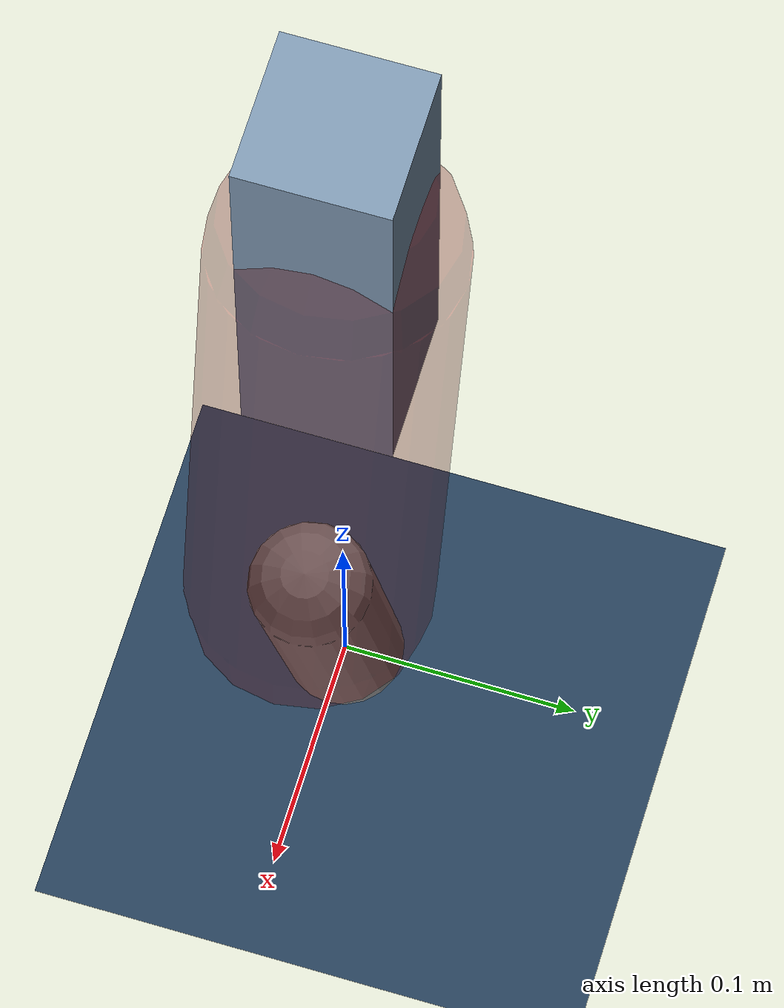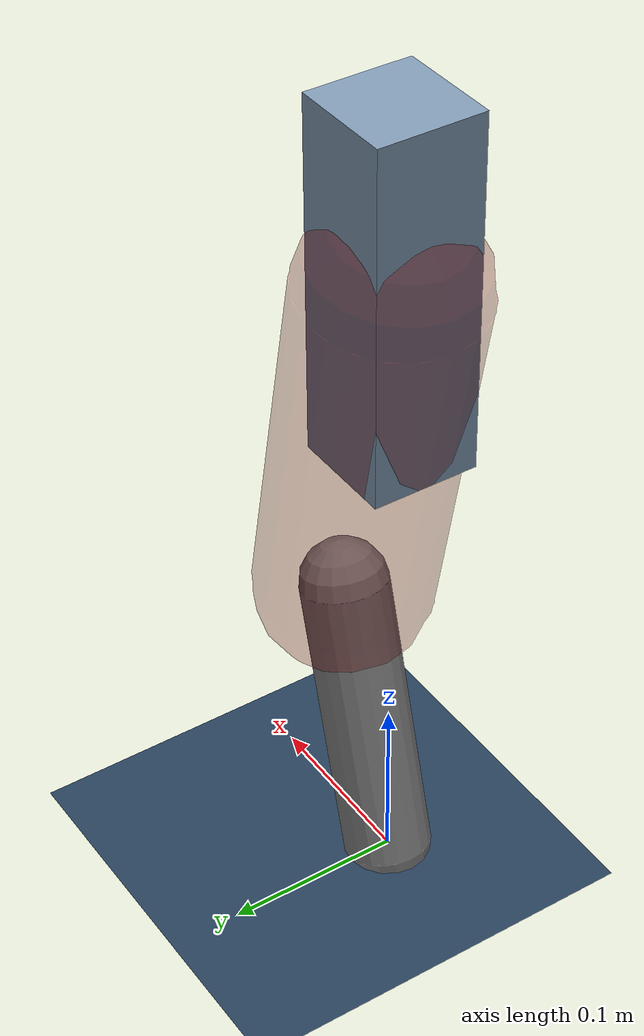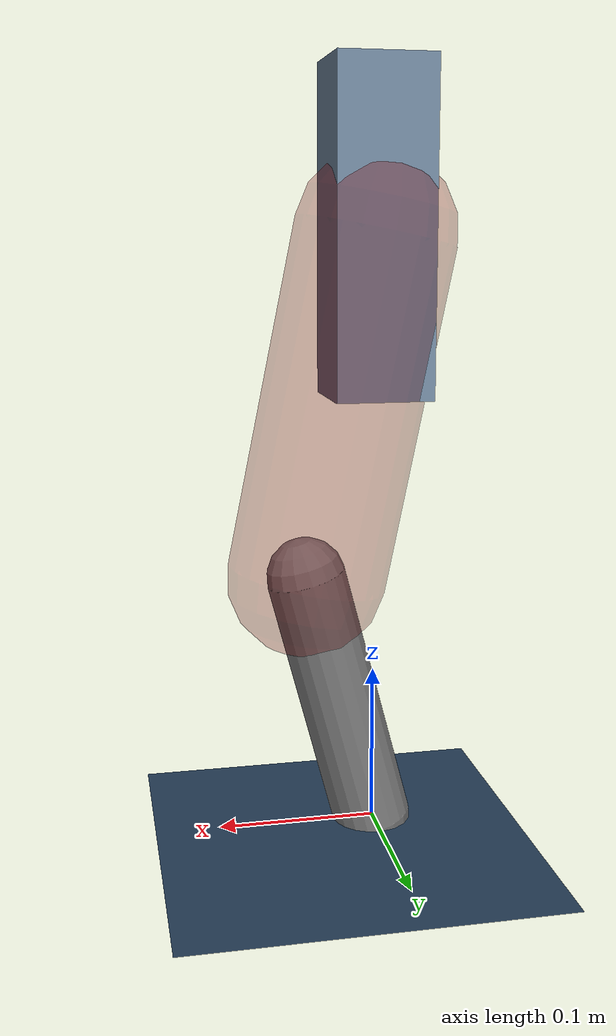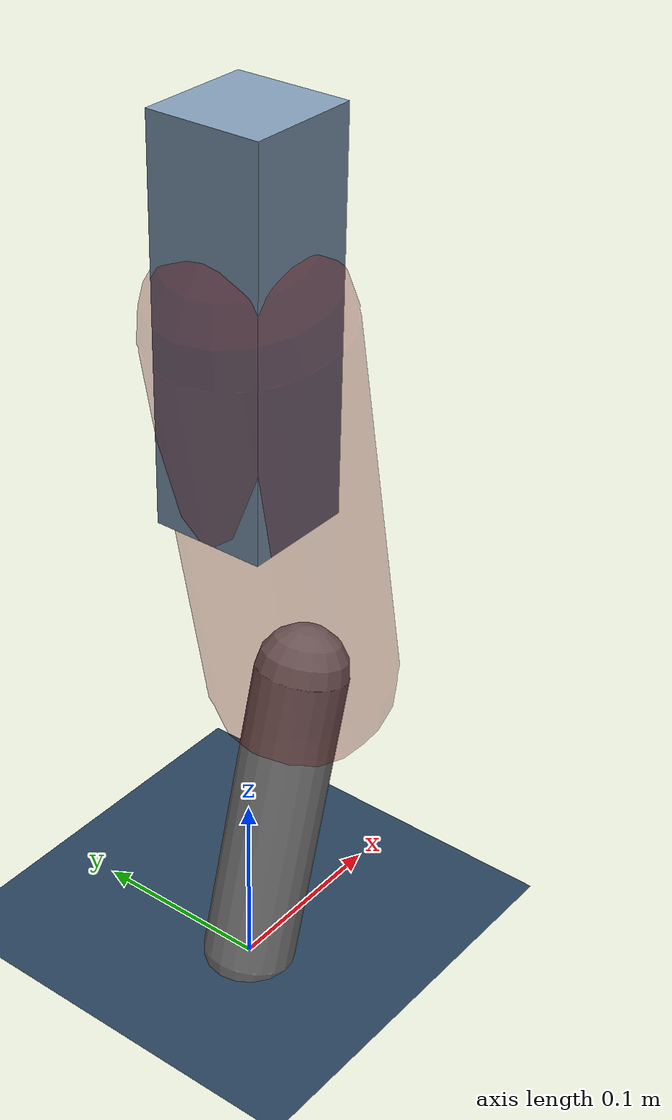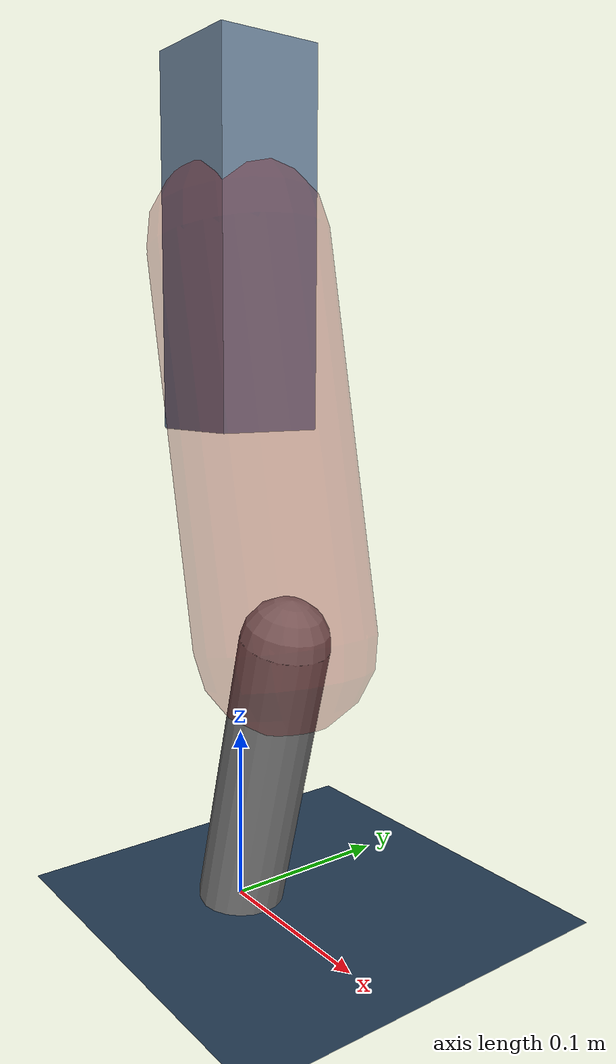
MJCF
<mujoco model="Hopper2D">
	<compiler inertiafromgeom="true" angle="radian" />
	<option timestep="0.001" integrator="implicit" cone="elliptic" solver="Newton" tolerance="1e-10" />

	<default>
		<geom contype="1" conaffinity="1" condim="3" friction="2 0.005 0.0001" solref="0.005 1" />
		<joint limited="true" damping="0.1" />
	</default>

	<asset>
		<texture name="skybox" type="skybox" builtin="gradient" rgb1=".4 .6 .8" rgb2="0 0 0" width="800" height="800" />
		<texture name="grid" type="2d" builtin="checker" rgb1=".1 .2 .3" rgb2=".2 .3 .4" width="300" height="300" mark="edge" markrgb=".2 .3 .4" />
		<material name="ground" texture="grid" texrepeat="1 1" texuniform="true" reflectance="0.1" />
		<material name="leg" rgba="0.5 0.6 0.7 1" />
	</asset>

	<worldbody>

		<geom name="floor" type="plane" size="5 5 0.25" material="ground" />

		<light directional="false" diffuse="0.8 0.8 0.8" specular="0.3 0.3 0.3" pos="0 0 2" dir="0 0 -1" />
		<light mode="targetbodycom" target="base" directional="false" diffuse="0.8 0.8 0.8" specular="0.3 0.3 0.3" pos="0 0 2" dir="0 0 -1" />

		<camera name="fixed" pos="0 -2 1" xyaxes="1 0 0 0 0 1" />
		<camera name="tracking" mode="trackcom" pos="0 -3 1" />

		<body name="root" pos="0 0 0.37632350692419625">
			<joint name="slide_x" type="slide" axis="1 0 0" range="-100 100" />
			<joint name="slide_z" type="slide" axis="0 0 1" range="0 10" />

			<body name="base" pos="0 0 0">
				<geom name="torso" type="box" size="0.03 0.03 0.1" mass="2.857" material="leg" />

				<body name="link1" pos="0 0 0" euler="0 1.3697746309604866 0">
					<joint type="hinge" axis="0 -1 0" pos="0 0 0" name="hinge1" limited="true" range="-3.14 3.14" stiffness="0" damping="0.1" />
					<geom name="thigh" type="capsule" fromto="0 0 0 0.21693232501486584 0 0" size="0.05" rgba="0.5 0 0 0.3" mass="0.7719308125371646" />

					<body name="link2" pos="0.21693232501486584 0 0" euler="0 0.4596036163908035 0">
						<joint type="hinge" axis="0 -1 0" pos="0 0 0" name="hinge2" limited="true" range="-3.14 3.14" stiffness="0" damping="0.1" />
						<geom name="shank" type="capsule" fromto="0 0 0 0.16939118190933045 0 0" size="0.025" mass="0.3747520637183974" />

					</body>
				</body>
			</body>
		</body>
	</worldbody>

	<actuator>
		<motor name="torque1" joint="hinge1" ctrlrange="-94.48842502398155 94.48842502398155" ctrllimited="true" gear="1" />
		<motor name="torque2" joint="hinge2" ctrlrange="-22.608957017666853 22.608957017666853" ctrllimited="true" gear="1" />
	</actuator>
</mujoco>
